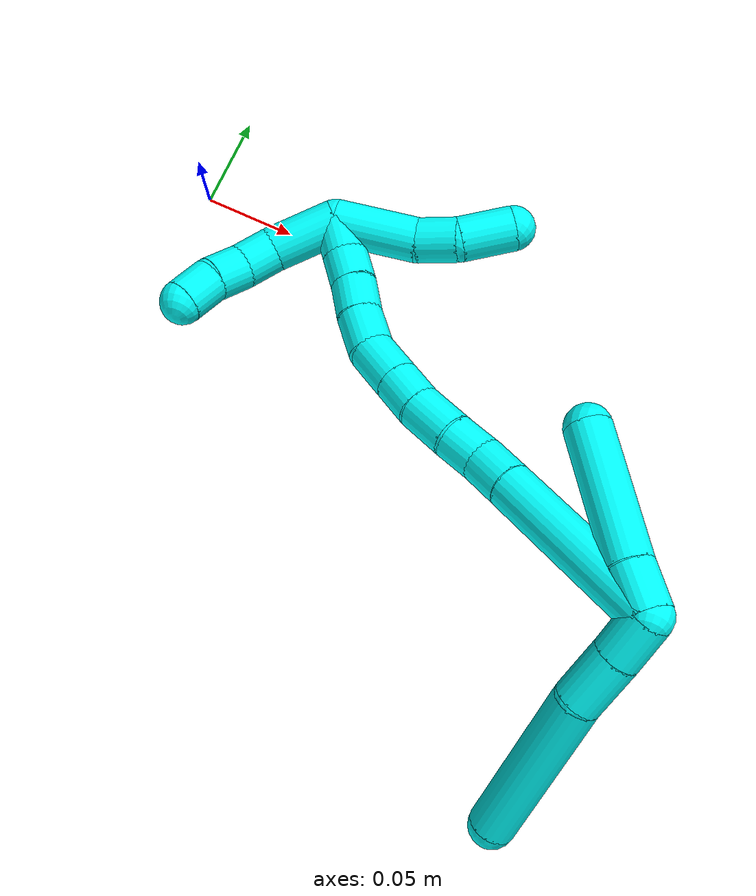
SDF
<sdf version="1.7">
 <world name="default">
  <model name="3">
   <static>0</static>
   <link name="3">
    <collision name="collision-cylinder-e_1_2_8">
     <pose>0.000465 -0.010067 0.00764 0.921565 0.03675 0.018245</pose>
     <geometry><cylinder><radius>0.0125</radius><length>0.025293</length></cylinder></geometry>
     <surface>
      <friction><ode><mu>1.16</mu><mu2>1.16</mu2><slip1>0</slip1><slip2>0</slip2></ode></friction>
      <contact><ode><kp>1e+06</kp><kd>1</kd><max_vel>0</max_vel><min_depth>0.001</min_depth></ode></contact>
     </surface>
    </collision>
    <visual name="visual-cylinder-e_1_2_8">
     <pose>0.000465 -0.010067 0.00764 0.921565 0.03675 0.018245</pose>
     <geometry><cylinder><radius>0.0125</radius><length>0.025293</length></cylinder></geometry>
     <material><ambient>0.003922 1 0.996078 1</ambient></material>
    </visual>
    <collision name="collision-cylinder-e_2_8_9">
     <pose>0.00106 -0.032572 0.024337 0.941481 0.008477 0.004314</pose>
     <geometry><cylinder><radius>0.0125</radius><length>0.030773</length></cylinder></geometry>
     <surface>
      <friction><ode><mu>1.16</mu><mu2>1.16</mu2><slip1>0</slip1><slip2>0</slip2></ode></friction>
      <contact><ode><kp>1e+06</kp><kd>1</kd><max_vel>0</max_vel><min_depth>0.001</min_depth></ode></contact>
     </surface>
    </collision>
    <visual name="visual-cylinder-e_2_8_9">
     <pose>0.00106 -0.032572 0.024337 0.941481 0.008477 0.004314</pose>
     <geometry><cylinder><radius>0.0125</radius><length>0.030773</length></cylinder></geometry>
     <material><ambient>0.003922 1 0.996078 1</ambient></material>
    </visual>
    <collision name="collision-cylinder-e_3_9_6">
     <pose>0.009452 -0.085084 0.056452 1.04866 0.176834 0.102445</pose>
     <geometry><cylinder><radius>0.0125</radius><length>0.093934</length></cylinder></geometry>
     <surface>
      <friction><ode><mu>1.16</mu><mu2>1.16</mu2><slip1>0</slip1><slip2>0</slip2></ode></friction>
      <contact><ode><kp>1e+06</kp><kd>1</kd><max_vel>0</max_vel><min_depth>0.001</min_depth></ode></contact>
     </surface>
    </collision>
    <visual name="visual-cylinder-e_3_9_6">
     <pose>0.009452 -0.085084 0.056452 1.04866 0.176834 0.102445</pose>
     <geometry><cylinder><radius>0.0125</radius><length>0.093934</length></cylinder></geometry>
     <material><ambient>0.003922 1 0.996078 1</ambient></material>
    </visual>
    <collision name="collision-cylinder-e_1_2_10">
     <pose>-0.006748 -0.002503 -0.010435 2.90619 -0.561363 -2.36312</pose>
     <geometry><cylinder><radius>0.0125</radius><length>0.025354</length></cylinder></geometry>
     <surface>
      <friction><ode><mu>1.16</mu><mu2>1.16</mu2><slip1>0</slip1><slip2>0</slip2></ode></friction>
      <contact><ode><kp>1e+06</kp><kd>1</kd><max_vel>0</max_vel><min_depth>0.001</min_depth></ode></contact>
     </surface>
    </collision>
    <visual name="visual-cylinder-e_1_2_10">
     <pose>-0.006748 -0.002503 -0.010435 2.90619 -0.561363 -2.36312</pose>
     <geometry><cylinder><radius>0.0125</radius><length>0.025354</length></cylinder></geometry>
     <material><ambient>0.003922 1 0.996078 1</ambient></material>
    </visual>
    <collision name="collision-cylinder-e_2_10_5">
     <pose>-0.030593 -0.012558 -0.053177 2.91195 -0.475798 -2.25371</pose>
     <geometry><cylinder><radius>0.0125</radius><length>0.074646</length></cylinder></geometry>
     <surface>
      <friction><ode><mu>1.16</mu><mu2>1.16</mu2><slip1>0</slip1><slip2>0</slip2></ode></friction>
      <contact><ode><kp>1e+06</kp><kd>1</kd><max_vel>0</max_vel><min_depth>0.001</min_depth></ode></contact>
     </surface>
    </collision>
    <visual name="visual-cylinder-e_2_10_5">
     <pose>-0.030593 -0.012558 -0.053177 2.91195 -0.475798 -2.25371</pose>
     <geometry><cylinder><radius>0.0125</radius><length>0.074646</length></cylinder></geometry>
     <material><ambient>0.003922 1 0.996078 1</ambient></material>
    </visual>
    <collision name="collision-cylinder-e_1_2_11">
     <pose>-0.03053 -0.028396 -0.028468 2.35746 -0.649426 -1.36662</pose>
     <geometry><cylinder><radius>0.0125</radius><length>0.100972</length></cylinder></geometry>
     <surface>
      <friction><ode><mu>1.16</mu><mu2>1.16</mu2><slip1>0</slip1><slip2>0</slip2></ode></friction>
      <contact><ode><kp>1e+06</kp><kd>1</kd><max_vel>0</max_vel><min_depth>0.001</min_depth></ode></contact>
     </surface>
    </collision>
    <visual name="visual-cylinder-e_1_2_11">
     <pose>-0.03053 -0.028396 -0.028468 2.35746 -0.649426 -1.36662</pose>
     <geometry><cylinder><radius>0.0125</radius><length>0.100972</length></cylinder></geometry>
     <material><ambient>0.003922 1 0.996078 1</ambient></material>
    </visual>
    <collision name="collision-cylinder-e_2_11_12">
     <pose>-0.06754 -0.063601 -0.06346 2.33479 -0.601981 -1.25764</pose>
     <geometry><cylinder><radius>0.0125</radius><length>0.022884</length></cylinder></geometry>
     <surface>
      <friction><ode><mu>1.16</mu><mu2>1.16</mu2><slip1>0</slip1><slip2>0</slip2></ode></friction>
      <contact><ode><kp>1e+06</kp><kd>1</kd><max_vel>0</max_vel><min_depth>0.001</min_depth></ode></contact>
     </surface>
    </collision>
    <visual name="visual-cylinder-e_2_11_12">
     <pose>-0.06754 -0.063601 -0.06346 2.33479 -0.601981 -1.25764</pose>
     <geometry><cylinder><radius>0.0125</radius><length>0.022884</length></cylinder></geometry>
     <material><ambient>0.003922 1 0.996078 1</ambient></material>
    </visual>
    <collision name="collision-cylinder-e_3_12_13">
     <pose>-0.081752 -0.075177 -0.074558 2.3356 -0.863849 -1.6488</pose>
     <geometry><cylinder><radius>0.0125</radius><length>0.020339</length></cylinder></geometry>
     <surface>
      <friction><ode><mu>1.16</mu><mu2>1.16</mu2><slip1>0</slip1><slip2>0</slip2></ode></friction>
      <contact><ode><kp>1e+06</kp><kd>1</kd><max_vel>0</max_vel><min_depth>0.001</min_depth></ode></contact>
     </surface>
    </collision>
    <visual name="visual-cylinder-e_3_12_13">
     <pose>-0.081752 -0.075177 -0.074558 2.3356 -0.863849 -1.6488</pose>
     <geometry><cylinder><radius>0.0125</radius><length>0.020339</length></cylinder></geometry>
     <material><ambient>0.003922 1 0.996078 1</ambient></material>
    </visual>
    <collision name="collision-cylinder-e_4_13_14">
     <pose>-0.098233 -0.087015 -0.085887 2.33335 -0.72978 -1.45811</pose>
     <geometry><cylinder><radius>0.0125</radius><length>0.026244</length></cylinder></geometry>
     <surface>
      <friction><ode><mu>1.16</mu><mu2>1.16</mu2><slip1>0</slip1><slip2>0</slip2></ode></friction>
      <contact><ode><kp>1e+06</kp><kd>1</kd><max_vel>0</max_vel><min_depth>0.001</min_depth></ode></contact>
     </surface>
    </collision>
    <visual name="visual-cylinder-e_4_13_14">
     <pose>-0.098233 -0.087015 -0.085887 2.33335 -0.72978 -1.45811</pose>
     <geometry><cylinder><radius>0.0125</radius><length>0.026244</length></cylinder></geometry>
     <material><ambient>0.003922 1 0.996078 1</ambient></material>
    </visual>
    <collision name="collision-cylinder-e_5_14_15">
     <pose>-0.113483 -0.099118 -0.09921 2.48781 -0.665997 -1.59072</pose>
     <geometry><cylinder><radius>0.0125</radius><length>0.021044</length></cylinder></geometry>
     <surface>
      <friction><ode><mu>1.16</mu><mu2>1.16</mu2><slip1>0</slip1><slip2>0</slip2></ode></friction>
      <contact><ode><kp>1e+06</kp><kd>1</kd><max_vel>0</max_vel><min_depth>0.001</min_depth></ode></contact>
     </surface>
    </collision>
    <visual name="visual-cylinder-e_5_14_15">
     <pose>-0.113483 -0.099118 -0.09921 2.48781 -0.665997 -1.59072</pose>
     <geometry><cylinder><radius>0.0125</radius><length>0.021044</length></cylinder></geometry>
     <material><ambient>0.003922 1 0.996078 1</ambient></material>
    </visual>
    <collision name="collision-cylinder-e_6_15_16">
     <pose>-0.12785 -0.11024 -0.113723 2.48765 -0.666072 -1.59057</pose>
     <geometry><cylinder><radius>0.0125</radius><length>0.025463</length></cylinder></geometry>
     <surface>
      <friction><ode><mu>1.16</mu><mu2>1.16</mu2><slip1>0</slip1><slip2>0</slip2></ode></friction>
      <contact><ode><kp>1e+06</kp><kd>1</kd><max_vel>0</max_vel><min_depth>0.001</min_depth></ode></contact>
     </surface>
    </collision>
    <visual name="visual-cylinder-e_6_15_16">
     <pose>-0.12785 -0.11024 -0.113723 2.48765 -0.666072 -1.59057</pose>
     <geometry><cylinder><radius>0.0125</radius><length>0.025463</length></cylinder></geometry>
     <material><ambient>0.003922 1 0.996078 1</ambient></material>
    </visual>
    <collision name="collision-cylinder-e_7_16_17">
     <pose>-0.141666 -0.11893 -0.131 2.86981 -0.550684 -2.24008</pose>
     <geometry><cylinder><radius>0.0125</radius><length>0.022738</length></cylinder></geometry>
     <surface>
      <friction><ode><mu>1.16</mu><mu2>1.16</mu2><slip1>0</slip1><slip2>0</slip2></ode></friction>
      <contact><ode><kp>1e+06</kp><kd>1</kd><max_vel>0</max_vel><min_depth>0.001</min_depth></ode></contact>
     </surface>
    </collision>
    <visual name="visual-cylinder-e_7_16_17">
     <pose>-0.141666 -0.11893 -0.131 2.86981 -0.550684 -2.24008</pose>
     <geometry><cylinder><radius>0.0125</radius><length>0.022738</length></cylinder></geometry>
     <material><ambient>0.003922 1 0.996078 1</ambient></material>
    </visual>
    <collision name="collision-cylinder-e_8_17_18">
     <pose>-0.152039 -0.123292 -0.149203 2.94561 -0.454921 -2.33834</pose>
     <geometry><cylinder><radius>0.0125</radius><length>0.020134</length></cylinder></geometry>
     <surface>
      <friction><ode><mu>1.16</mu><mu2>1.16</mu2><slip1>0</slip1><slip2>0</slip2></ode></friction>
      <contact><ode><kp>1e+06</kp><kd>1</kd><max_vel>0</max_vel><min_depth>0.001</min_depth></ode></contact>
     </surface>
    </collision>
    <visual name="visual-cylinder-e_8_17_18">
     <pose>-0.152039 -0.123292 -0.149203 2.94561 -0.454921 -2.33834</pose>
     <geometry><cylinder><radius>0.0125</radius><length>0.020134</length></cylinder></geometry>
     <material><ambient>0.003922 1 0.996078 1</ambient></material>
    </visual>
    <collision name="collision-cylinder-e_9_18_19">
     <pose>-0.161333 -0.127411 -0.166585 2.8713 -0.504012 -2.16985</pose>
     <geometry><cylinder><radius>0.0125</radius><length>0.020175</length></cylinder></geometry>
     <surface>
      <friction><ode><mu>1.16</mu><mu2>1.16</mu2><slip1>0</slip1><slip2>0</slip2></ode></friction>
      <contact><ode><kp>1e+06</kp><kd>1</kd><max_vel>0</max_vel><min_depth>0.001</min_depth></ode></contact>
     </surface>
    </collision>
    <visual name="visual-cylinder-e_9_18_19">
     <pose>-0.161333 -0.127411 -0.166585 2.8713 -0.504012 -2.16985</pose>
     <geometry><cylinder><radius>0.0125</radius><length>0.020175</length></cylinder></geometry>
     <material><ambient>0.003922 1 0.996078 1</ambient></material>
    </visual>
    <collision name="collision-cylinder-e_10_19_1">
     <pose>-0.172389 -0.129574 -0.182958 -3.11673 -0.666466 3.06981</pose>
     <geometry><cylinder><radius>0.0125</radius><length>0.020007</length></cylinder></geometry>
     <surface>
      <friction><ode><mu>1.16</mu><mu2>1.16</mu2><slip1>0</slip1><slip2>0</slip2></ode></friction>
      <contact><ode><kp>1e+06</kp><kd>1</kd><max_vel>0</max_vel><min_depth>0.001</min_depth></ode></contact>
     </surface>
    </collision>
    <visual name="visual-cylinder-e_10_19_1">
     <pose>-0.172389 -0.129574 -0.182958 -3.11673 -0.666466 3.06981</pose>
     <geometry><cylinder><radius>0.0125</radius><length>0.020007</length></cylinder></geometry>
     <material><ambient>0.003922 1 0.996078 1</ambient></material>
    </visual>
    <collision name="collision-cylinder-e_1_1_20">
     <pose>-0.157827 -0.118751 -0.192228 -1.7027 1.09383 -1.2147</pose>
     <geometry><cylinder><radius>0.0125</radius><length>0.046705</length></cylinder></geometry>
     <surface>
      <friction><ode><mu>1.16</mu><mu2>1.16</mu2><slip1>0</slip1><slip2>0</slip2></ode></friction>
      <contact><ode><kp>1e+06</kp><kd>1</kd><max_vel>0</max_vel><min_depth>0.001</min_depth></ode></contact>
     </surface>
    </collision>
    <visual name="visual-cylinder-e_1_1_20">
     <pose>-0.157827 -0.118751 -0.192228 -1.7027 1.09383 -1.2147</pose>
     <geometry><cylinder><radius>0.0125</radius><length>0.046705</length></cylinder></geometry>
     <material><ambient>0.003922 1 0.996078 1</ambient></material>
    </visual>
    <collision name="collision-cylinder-e_2_20_21">
     <pose>-0.128351 -0.100892 -0.195874 -1.87062 0.856486 -1.10845</pose>
     <geometry><cylinder><radius>0.0125</radius><length>0.023109</length></cylinder></geometry>
     <surface>
      <friction><ode><mu>1.16</mu><mu2>1.16</mu2><slip1>0</slip1><slip2>0</slip2></ode></friction>
      <contact><ode><kp>1e+06</kp><kd>1</kd><max_vel>0</max_vel><min_depth>0.001</min_depth></ode></contact>
     </surface>
    </collision>
    <visual name="visual-cylinder-e_2_20_21">
     <pose>-0.128351 -0.100892 -0.195874 -1.87062 0.856486 -1.10845</pose>
     <geometry><cylinder><radius>0.0125</radius><length>0.023109</length></cylinder></geometry>
     <material><ambient>0.003922 1 0.996078 1</ambient></material>
    </visual>
    <collision name="collision-cylinder-e_3_21_4">
     <pose>-0.108652 -0.086571 -0.205674 -2.38862 0.81364 -1.65671</pose>
     <geometry><cylinder><radius>0.0125</radius><length>0.030186</length></cylinder></geometry>
     <surface>
      <friction><ode><mu>1.16</mu><mu2>1.16</mu2><slip1>0</slip1><slip2>0</slip2></ode></friction>
      <contact><ode><kp>1e+06</kp><kd>1</kd><max_vel>0</max_vel><min_depth>0.001</min_depth></ode></contact>
     </surface>
    </collision>
    <visual name="visual-cylinder-e_3_21_4">
     <pose>-0.108652 -0.086571 -0.205674 -2.38862 0.81364 -1.65671</pose>
     <geometry><cylinder><radius>0.0125</radius><length>0.030186</length></cylinder></geometry>
     <material><ambient>0.003922 1 0.996078 1</ambient></material>
    </visual>
    <collision name="collision-cylinder-e_1_1_22">
     <pose>-0.189343 -0.140027 -0.179248 0.74393 -0.60051 -0.240413</pose>
     <geometry><cylinder><radius>0.0125</radius><length>0.038117</length></cylinder></geometry>
     <surface>
      <friction><ode><mu>1.16</mu><mu2>1.16</mu2><slip1>0</slip1><slip2>0</slip2></ode></friction>
      <contact><ode><kp>1e+06</kp><kd>1</kd><max_vel>0</max_vel><min_depth>0.001</min_depth></ode></contact>
     </surface>
    </collision>
    <visual name="visual-cylinder-e_1_1_22">
     <pose>-0.189343 -0.140027 -0.179248 0.74393 -0.60051 -0.240413</pose>
     <geometry><cylinder><radius>0.0125</radius><length>0.038117</length></cylinder></geometry>
     <material><ambient>0.003922 1 0.996078 1</ambient></material>
    </visual>
    <collision name="collision-cylinder-e_2_22_23">
     <pose>-0.205442 -0.15391 -0.159595 0.380649 -0.54932 -0.108468</pose>
     <geometry><cylinder><radius>0.0125</radius><length>0.020416</length></cylinder></geometry>
     <surface>
      <friction><ode><mu>1.16</mu><mu2>1.16</mu2><slip1>0</slip1><slip2>0</slip2></ode></friction>
      <contact><ode><kp>1e+06</kp><kd>1</kd><max_vel>0</max_vel><min_depth>0.001</min_depth></ode></contact>
     </surface>
    </collision>
    <visual name="visual-cylinder-e_2_22_23">
     <pose>-0.205442 -0.15391 -0.159595 0.380649 -0.54932 -0.108468</pose>
     <geometry><cylinder><radius>0.0125</radius><length>0.020416</length></cylinder></geometry>
     <material><ambient>0.003922 1 0.996078 1</ambient></material>
    </visual>
    <collision name="collision-cylinder-e_3_23_24">
     <pose>-0.216694 -0.157623 -0.143228 0.057689 -0.61988 -0.01848</pose>
     <geometry><cylinder><radius>0.0125</radius><length>0.020387</length></cylinder></geometry>
     <surface>
      <friction><ode><mu>1.16</mu><mu2>1.16</mu2><slip1>0</slip1><slip2>0</slip2></ode></friction>
      <contact><ode><kp>1e+06</kp><kd>1</kd><max_vel>0</max_vel><min_depth>0.001</min_depth></ode></contact>
     </surface>
    </collision>
    <visual name="visual-cylinder-e_3_23_24">
     <pose>-0.216694 -0.157623 -0.143228 0.057689 -0.61988 -0.01848</pose>
     <geometry><cylinder><radius>0.0125</radius><length>0.020387</length></cylinder></geometry>
     <material><ambient>0.003922 1 0.996078 1</ambient></material>
    </visual>
    <collision name="collision-cylinder-e_4_24_3">
     <pose>-0.22675 -0.159469 -0.125347 0.141636 -0.403091 -0.028985</pose>
     <geometry><cylinder><radius>0.0125</radius><length>0.021079</length></cylinder></geometry>
     <surface>
      <friction><ode><mu>1.16</mu><mu2>1.16</mu2><slip1>0</slip1><slip2>0</slip2></ode></friction>
      <contact><ode><kp>1e+06</kp><kd>1</kd><max_vel>0</max_vel><min_depth>0.001</min_depth></ode></contact>
     </surface>
    </collision>
    <visual name="visual-cylinder-e_4_24_3">
     <pose>-0.22675 -0.159469 -0.125347 0.141636 -0.403091 -0.028985</pose>
     <geometry><cylinder><radius>0.0125</radius><length>0.021079</length></cylinder></geometry>
     <material><ambient>0.003922 1 0.996078 1</ambient></material>
    </visual>
    <collision name="collision-sphere-3">
     <pose>-0.230884 -0.160838 -0.115749 0 -0 0</pose>
     <geometry><sphere><radius>0.0125</radius></sphere></geometry>
     <surface>
      <friction><ode><mu>1.16</mu><mu2>1.16</mu2><slip1>0</slip1><slip2>0</slip2></ode></friction>
      <contact><ode><kp>1e+06</kp><kd>1</kd><max_vel>0</max_vel><min_depth>0.001</min_depth></ode></contact>
     </surface>
    </collision>
    <visual name="visual-sphere-3">
     <pose>-0.230884 -0.160838 -0.115749 0 -0 0</pose>
     <geometry><sphere><radius>0.0125</radius></sphere></geometry>
     <material><ambient>0.003922 1 0.996078 1</ambient></material>
    </visual>
    <collision name="collision-sphere-24">
     <pose>-0.222615 -0.158101 -0.134945 0 -0 0</pose>
     <geometry><sphere><radius>0.0125</radius></sphere></geometry>
     <surface>
      <friction><ode><mu>1.16</mu><mu2>1.16</mu2><slip1>0</slip1><slip2>0</slip2></ode></friction>
      <contact><ode><kp>1e+06</kp><kd>1</kd><max_vel>0</max_vel><min_depth>0.001</min_depth></ode></contact>
     </surface>
    </collision>
    <visual name="visual-sphere-24">
     <pose>-0.222615 -0.158101 -0.134945 0 -0 0</pose>
     <geometry><sphere><radius>0.0125</radius></sphere></geometry>
     <material><ambient>0.003922 1 0.996078 1</ambient></material>
    </visual>
    <collision name="collision-sphere-23">
     <pose>-0.210772 -0.157144 -0.151512 0 -0 0</pose>
     <geometry><sphere><radius>0.0125</radius></sphere></geometry>
     <surface>
      <friction><ode><mu>1.16</mu><mu2>1.16</mu2><slip1>0</slip1><slip2>0</slip2></ode></friction>
      <contact><ode><kp>1e+06</kp><kd>1</kd><max_vel>0</max_vel><min_depth>0.001</min_depth></ode></contact>
     </surface>
    </collision>
    <visual name="visual-sphere-23">
     <pose>-0.210772 -0.157144 -0.151512 0 -0 0</pose>
     <geometry><sphere><radius>0.0125</radius></sphere></geometry>
     <material><ambient>0.003922 1 0.996078 1</ambient></material>
    </visual>
    <collision name="collision-sphere-22">
     <pose>-0.200112 -0.150675 -0.167678 0 -0 0</pose>
     <geometry><sphere><radius>0.0125</radius></sphere></geometry>
     <surface>
      <friction><ode><mu>1.16</mu><mu2>1.16</mu2><slip1>0</slip1><slip2>0</slip2></ode></friction>
      <contact><ode><kp>1e+06</kp><kd>1</kd><max_vel>0</max_vel><min_depth>0.001</min_depth></ode></contact>
     </surface>
    </collision>
    <visual name="visual-sphere-22">
     <pose>-0.200112 -0.150675 -0.167678 0 -0 0</pose>
     <geometry><sphere><radius>0.0125</radius></sphere></geometry>
     <material><ambient>0.003922 1 0.996078 1</ambient></material>
    </visual>
    <collision name="collision-sphere-4">
     <pose>-0.097682 -0.079482 -0.213238 0 -0 0</pose>
     <geometry><sphere><radius>0.0125</radius></sphere></geometry>
     <surface>
      <friction><ode><mu>1.16</mu><mu2>1.16</mu2><slip1>0</slip1><slip2>0</slip2></ode></friction>
      <contact><ode><kp>1e+06</kp><kd>1</kd><max_vel>0</max_vel><min_depth>0.001</min_depth></ode></contact>
     </surface>
    </collision>
    <visual name="visual-sphere-4">
     <pose>-0.097682 -0.079482 -0.213238 0 -0 0</pose>
     <geometry><sphere><radius>0.0125</radius></sphere></geometry>
     <material><ambient>0.003922 1 0.996078 1</ambient></material>
    </visual>
    <collision name="collision-sphere-21">
     <pose>-0.119621 -0.09366 -0.198109 0 -0 0</pose>
     <geometry><sphere><radius>0.0125</radius></sphere></geometry>
     <surface>
      <friction><ode><mu>1.16</mu><mu2>1.16</mu2><slip1>0</slip1><slip2>0</slip2></ode></friction>
      <contact><ode><kp>1e+06</kp><kd>1</kd><max_vel>0</max_vel><min_depth>0.001</min_depth></ode></contact>
     </surface>
    </collision>
    <visual name="visual-sphere-21">
     <pose>-0.119621 -0.09366 -0.198109 0 -0 0</pose>
     <geometry><sphere><radius>0.0125</radius></sphere></geometry>
     <material><ambient>0.003922 1 0.996078 1</ambient></material>
    </visual>
    <collision name="collision-sphere-20">
     <pose>-0.137081 -0.108123 -0.193638 0 -0 0</pose>
     <geometry><sphere><radius>0.0125</radius></sphere></geometry>
     <surface>
      <friction><ode><mu>1.16</mu><mu2>1.16</mu2><slip1>0</slip1><slip2>0</slip2></ode></friction>
      <contact><ode><kp>1e+06</kp><kd>1</kd><max_vel>0</max_vel><min_depth>0.001</min_depth></ode></contact>
     </surface>
    </collision>
    <visual name="visual-sphere-20">
     <pose>-0.137081 -0.108123 -0.193638 0 -0 0</pose>
     <geometry><sphere><radius>0.0125</radius></sphere></geometry>
     <material><ambient>0.003922 1 0.996078 1</ambient></material>
    </visual>
    <collision name="collision-sphere-5">
     <pose>-0.047688 -0.02011 -0.085484 0 -0 0</pose>
     <geometry><sphere><radius>0.0125</radius></sphere></geometry>
     <surface>
      <friction><ode><mu>1.16</mu><mu2>1.16</mu2><slip1>0</slip1><slip2>0</slip2></ode></friction>
      <contact><ode><kp>1e+06</kp><kd>1</kd><max_vel>0</max_vel><min_depth>0.001</min_depth></ode></contact>
     </surface>
    </collision>
    <visual name="visual-sphere-5">
     <pose>-0.047688 -0.02011 -0.085484 0 -0 0</pose>
     <geometry><sphere><radius>0.0125</radius></sphere></geometry>
     <material><ambient>0.003922 1 0.996078 1</ambient></material>
    </visual>
    <collision name="collision-sphere-10">
     <pose>-0.013497 -0.005006 -0.020871 0 -0 0</pose>
     <geometry><sphere><radius>0.0125</radius></sphere></geometry>
     <surface>
      <friction><ode><mu>1.16</mu><mu2>1.16</mu2><slip1>0</slip1><slip2>0</slip2></ode></friction>
      <contact><ode><kp>1e+06</kp><kd>1</kd><max_vel>0</max_vel><min_depth>0.001</min_depth></ode></contact>
     </surface>
    </collision>
    <visual name="visual-sphere-10">
     <pose>-0.013497 -0.005006 -0.020871 0 -0 0</pose>
     <geometry><sphere><radius>0.0125</radius></sphere></geometry>
     <material><ambient>0.003922 1 0.996078 1</ambient></material>
    </visual>
    <collision name="collision-sphere-6">
     <pose>0.017714 -0.125159 0.079511 0 -0 0</pose>
     <geometry><sphere><radius>0.0125</radius></sphere></geometry>
     <surface>
      <friction><ode><mu>1.16</mu><mu2>1.16</mu2><slip1>0</slip1><slip2>0</slip2></ode></friction>
      <contact><ode><kp>1e+06</kp><kd>1</kd><max_vel>0</max_vel><min_depth>0.001</min_depth></ode></contact>
     </surface>
    </collision>
    <visual name="visual-sphere-6">
     <pose>0.017714 -0.125159 0.079511 0 -0 0</pose>
     <geometry><sphere><radius>0.0125</radius></sphere></geometry>
     <material><ambient>0.003922 1 0.996078 1</ambient></material>
    </visual>
    <collision name="collision-sphere-9">
     <pose>0.00119 -0.04501 0.033393 0 -0 0</pose>
     <geometry><sphere><radius>0.0125</radius></sphere></geometry>
     <surface>
      <friction><ode><mu>1.16</mu><mu2>1.16</mu2><slip1>0</slip1><slip2>0</slip2></ode></friction>
      <contact><ode><kp>1e+06</kp><kd>1</kd><max_vel>0</max_vel><min_depth>0.001</min_depth></ode></contact>
     </surface>
    </collision>
    <visual name="visual-sphere-9">
     <pose>0.00119 -0.04501 0.033393 0 -0 0</pose>
     <geometry><sphere><radius>0.0125</radius></sphere></geometry>
     <material><ambient>0.003922 1 0.996078 1</ambient></material>
    </visual>
    <collision name="collision-sphere-2">
     <geometry><sphere><radius>0.0125</radius></sphere></geometry>
     <surface>
      <friction><ode><mu>1.16</mu><mu2>1.16</mu2><slip1>0</slip1><slip2>0</slip2></ode></friction>
      <contact><ode><kp>1e+06</kp><kd>1</kd><max_vel>0</max_vel><min_depth>0.001</min_depth></ode></contact>
     </surface>
    </collision>
    <visual name="visual-sphere-2">
     <geometry><sphere><radius>0.0125</radius></sphere></geometry>
     <material><ambient>0.003922 1 0.996078 1</ambient></material>
    </visual>
    <collision name="collision-sphere-19">
     <pose>-0.166205 -0.12977 -0.175097 0 -0 0</pose>
     <geometry><sphere><radius>0.0125</radius></sphere></geometry>
     <surface>
      <friction><ode><mu>1.16</mu><mu2>1.16</mu2><slip1>0</slip1><slip2>0</slip2></ode></friction>
      <contact><ode><kp>1e+06</kp><kd>1</kd><max_vel>0</max_vel><min_depth>0.001</min_depth></ode></contact>
     </surface>
    </collision>
    <visual name="visual-sphere-19">
     <pose>-0.166205 -0.12977 -0.175097 0 -0 0</pose>
     <geometry><sphere><radius>0.0125</radius></sphere></geometry>
     <material><ambient>0.003922 1 0.996078 1</ambient></material>
    </visual>
    <collision name="collision-sphere-8">
     <pose>0.000929 -0.020133 0.015281 0 -0 0</pose>
     <geometry><sphere><radius>0.0125</radius></sphere></geometry>
     <surface>
      <friction><ode><mu>1.16</mu><mu2>1.16</mu2><slip1>0</slip1><slip2>0</slip2></ode></friction>
      <contact><ode><kp>1e+06</kp><kd>1</kd><max_vel>0</max_vel><min_depth>0.001</min_depth></ode></contact>
     </surface>
    </collision>
    <visual name="visual-sphere-8">
     <pose>0.000929 -0.020133 0.015281 0 -0 0</pose>
     <geometry><sphere><radius>0.0125</radius></sphere></geometry>
     <material><ambient>0.003922 1 0.996078 1</ambient></material>
    </visual>
    <collision name="collision-sphere-11">
     <pose>-0.061061 -0.056792 -0.056936 0 -0 0</pose>
     <geometry><sphere><radius>0.0125</radius></sphere></geometry>
     <surface>
      <friction><ode><mu>1.16</mu><mu2>1.16</mu2><slip1>0</slip1><slip2>0</slip2></ode></friction>
      <contact><ode><kp>1e+06</kp><kd>1</kd><max_vel>0</max_vel><min_depth>0.001</min_depth></ode></contact>
     </surface>
    </collision>
    <visual name="visual-sphere-11">
     <pose>-0.061061 -0.056792 -0.056936 0 -0 0</pose>
     <geometry><sphere><radius>0.0125</radius></sphere></geometry>
     <material><ambient>0.003922 1 0.996078 1</ambient></material>
    </visual>
    <collision name="collision-sphere-12">
     <pose>-0.07402 -0.070411 -0.069984 0 -0 0</pose>
     <geometry><sphere><radius>0.0125</radius></sphere></geometry>
     <surface>
      <friction><ode><mu>1.16</mu><mu2>1.16</mu2><slip1>0</slip1><slip2>0</slip2></ode></friction>
      <contact><ode><kp>1e+06</kp><kd>1</kd><max_vel>0</max_vel><min_depth>0.001</min_depth></ode></contact>
     </surface>
    </collision>
    <visual name="visual-sphere-12">
     <pose>-0.07402 -0.070411 -0.069984 0 -0 0</pose>
     <geometry><sphere><radius>0.0125</radius></sphere></geometry>
     <material><ambient>0.003922 1 0.996078 1</ambient></material>
    </visual>
    <collision name="collision-sphere-13">
     <pose>-0.089485 -0.079943 -0.079132 0 -0 0</pose>
     <geometry><sphere><radius>0.0125</radius></sphere></geometry>
     <surface>
      <friction><ode><mu>1.16</mu><mu2>1.16</mu2><slip1>0</slip1><slip2>0</slip2></ode></friction>
      <contact><ode><kp>1e+06</kp><kd>1</kd><max_vel>0</max_vel><min_depth>0.001</min_depth></ode></contact>
     </surface>
    </collision>
    <visual name="visual-sphere-13">
     <pose>-0.089485 -0.079943 -0.079132 0 -0 0</pose>
     <geometry><sphere><radius>0.0125</radius></sphere></geometry>
     <material><ambient>0.003922 1 0.996078 1</ambient></material>
    </visual>
    <collision name="collision-sphere-14">
     <pose>-0.106982 -0.094087 -0.092643 0 -0 0</pose>
     <geometry><sphere><radius>0.0125</radius></sphere></geometry>
     <surface>
      <friction><ode><mu>1.16</mu><mu2>1.16</mu2><slip1>0</slip1><slip2>0</slip2></ode></friction>
      <contact><ode><kp>1e+06</kp><kd>1</kd><max_vel>0</max_vel><min_depth>0.001</min_depth></ode></contact>
     </surface>
    </collision>
    <visual name="visual-sphere-14">
     <pose>-0.106982 -0.094087 -0.092643 0 -0 0</pose>
     <geometry><sphere><radius>0.0125</radius></sphere></geometry>
     <material><ambient>0.003922 1 0.996078 1</ambient></material>
    </visual>
    <collision name="collision-sphere-15">
     <pose>-0.119984 -0.10415 -0.105778 0 -0 0</pose>
     <geometry><sphere><radius>0.0125</radius></sphere></geometry>
     <surface>
      <friction><ode><mu>1.16</mu><mu2>1.16</mu2><slip1>0</slip1><slip2>0</slip2></ode></friction>
      <contact><ode><kp>1e+06</kp><kd>1</kd><max_vel>0</max_vel><min_depth>0.001</min_depth></ode></contact>
     </surface>
    </collision>
    <visual name="visual-sphere-15">
     <pose>-0.119984 -0.10415 -0.105778 0 -0 0</pose>
     <geometry><sphere><radius>0.0125</radius></sphere></geometry>
     <material><ambient>0.003922 1 0.996078 1</ambient></material>
    </visual>
    <collision name="collision-sphere-16">
     <pose>-0.135717 -0.116329 -0.121668 0 -0 0</pose>
     <geometry><sphere><radius>0.0125</radius></sphere></geometry>
     <surface>
      <friction><ode><mu>1.16</mu><mu2>1.16</mu2><slip1>0</slip1><slip2>0</slip2></ode></friction>
      <contact><ode><kp>1e+06</kp><kd>1</kd><max_vel>0</max_vel><min_depth>0.001</min_depth></ode></contact>
     </surface>
    </collision>
    <visual name="visual-sphere-16">
     <pose>-0.135717 -0.116329 -0.121668 0 -0 0</pose>
     <geometry><sphere><radius>0.0125</radius></sphere></geometry>
     <material><ambient>0.003922 1 0.996078 1</ambient></material>
    </visual>
    <collision name="collision-sphere-17">
     <pose>-0.147615 -0.121531 -0.140333 0 -0 0</pose>
     <geometry><sphere><radius>0.0125</radius></sphere></geometry>
     <surface>
      <friction><ode><mu>1.16</mu><mu2>1.16</mu2><slip1>0</slip1><slip2>0</slip2></ode></friction>
      <contact><ode><kp>1e+06</kp><kd>1</kd><max_vel>0</max_vel><min_depth>0.001</min_depth></ode></contact>
     </surface>
    </collision>
    <visual name="visual-sphere-17">
     <pose>-0.147615 -0.121531 -0.140333 0 -0 0</pose>
     <geometry><sphere><radius>0.0125</radius></sphere></geometry>
     <material><ambient>0.003922 1 0.996078 1</ambient></material>
    </visual>
    <collision name="collision-sphere-18">
     <pose>-0.156462 -0.125052 -0.158073 0 -0 0</pose>
     <geometry><sphere><radius>0.0125</radius></sphere></geometry>
     <surface>
      <friction><ode><mu>1.16</mu><mu2>1.16</mu2><slip1>0</slip1><slip2>0</slip2></ode></friction>
      <contact><ode><kp>1e+06</kp><kd>1</kd><max_vel>0</max_vel><min_depth>0.001</min_depth></ode></contact>
     </surface>
    </collision>
    <visual name="visual-sphere-18">
     <pose>-0.156462 -0.125052 -0.158073 0 -0 0</pose>
     <geometry><sphere><radius>0.0125</radius></sphere></geometry>
     <material><ambient>0.003922 1 0.996078 1</ambient></material>
    </visual>
    <collision name="collision-sphere-1">
     <pose>-0.178574 -0.129379 -0.190818 0 -0 0</pose>
     <geometry><sphere><radius>0.0125</radius></sphere></geometry>
     <surface>
      <friction><ode><mu>1.16</mu><mu2>1.16</mu2><slip1>0</slip1><slip2>0</slip2></ode></friction>
      <contact><ode><kp>1e+06</kp><kd>1</kd><max_vel>0</max_vel><min_depth>0.001</min_depth></ode></contact>
     </surface>
    </collision>
    <visual name="visual-sphere-1">
     <pose>-0.178574 -0.129379 -0.190818 0 -0 0</pose>
     <geometry><sphere><radius>0.0125</radius></sphere></geometry>
     <material><ambient>0.003922 1 0.996078 1</ambient></material>
    </visual>
    <inertial>
     <pose>-0.08433 -0.078898 -0.079253 0 -0 0</pose>
     <mass>0.75</mass>
     <inertia><ixx>-4.7e-05</ixx><ixy>0</ixy><ixz>0</ixz><iyy>-8e-06</iyy><iyz>0</iyz><izz>0.000179</izz></inertia>
    </inertial>
   </link>
   <pose>0.306969 -0.135735 0.110258 1.27754 0.406472 -0.010248</pose>
  </model>
 </world>
</sdf>
